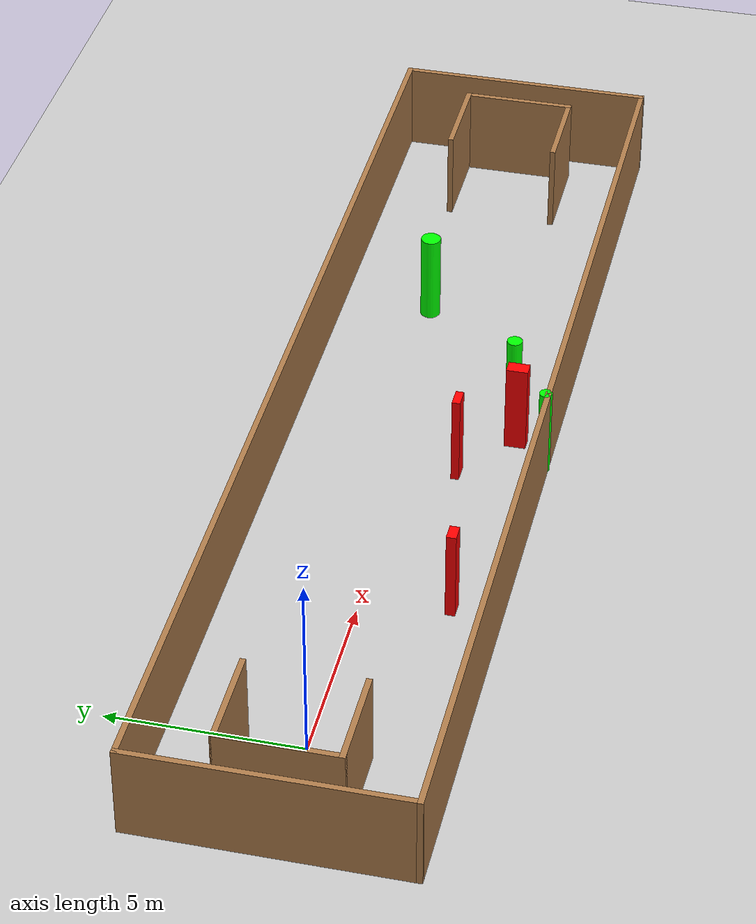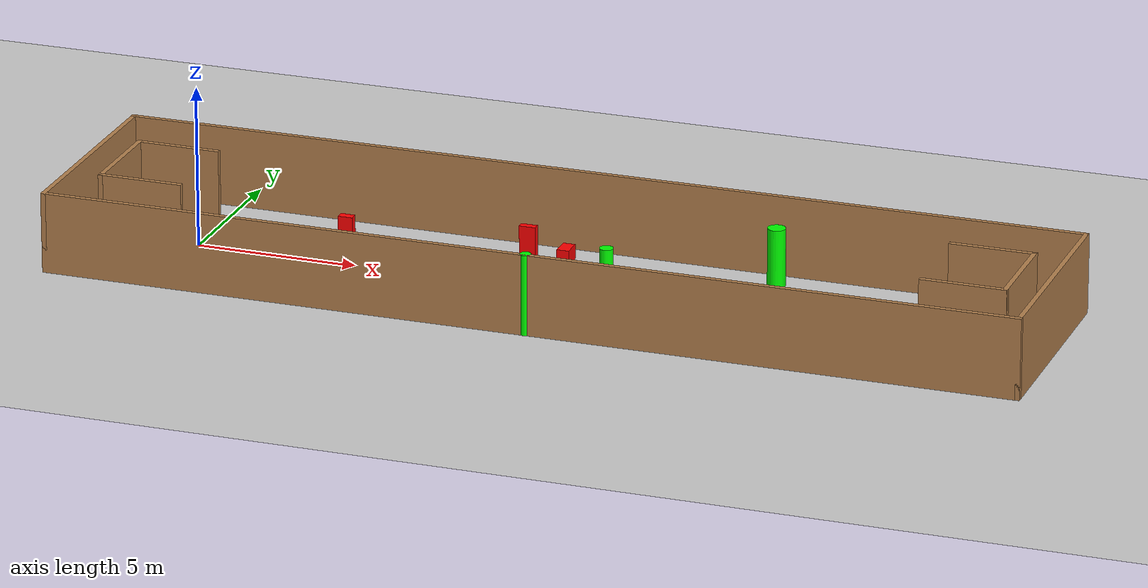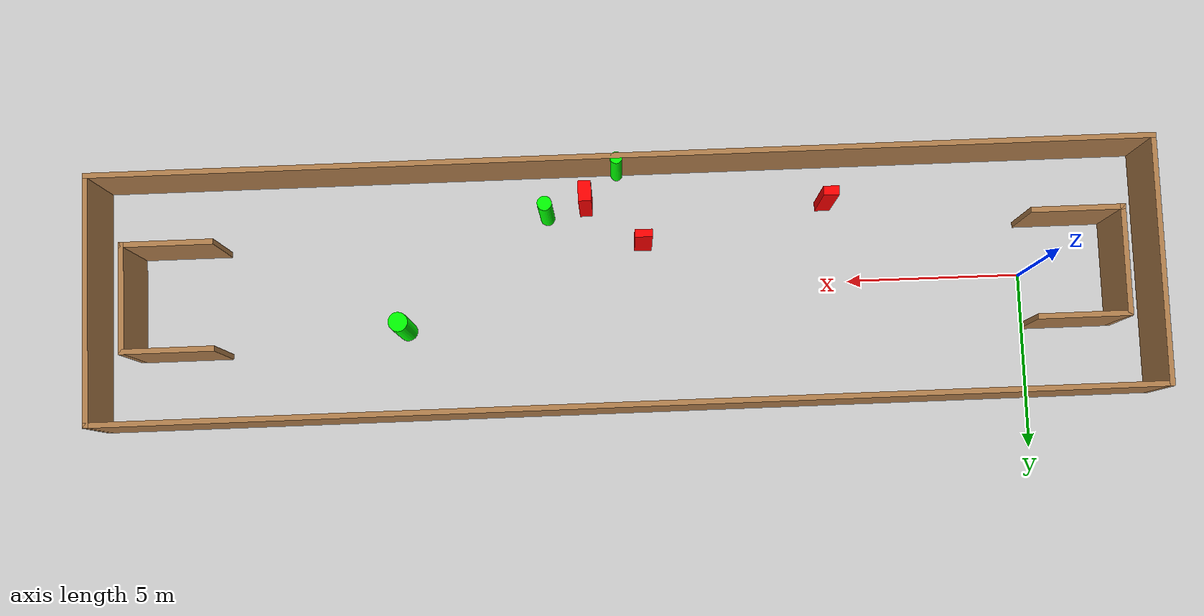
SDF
<sdf version="1.7">
 <world name="default">
  <light name="sun" type="directional">
   <pose>0 0 10 0 -0 0</pose>
   <diffuse>0.8 0.8 0.8 1</diffuse>
   <specular>0.2 0.2 0.2 1</specular>
   <attenuation>
    <range>1000</range>
    <constant>0.9</constant>
    <linear>0.01</linear>
    <quadratic>0.001</quadratic>
   </attenuation>
   <direction>-0.5 0.1 -0.9</direction>
   <spot><inner_angle>0</inner_angle><outer_angle>0</outer_angle><falloff>0</falloff></spot>
  </light>
  <model name="ground_plane">
   <static>1</static>
   <link name="link">
    <collision name="collision">
     <geometry><plane><normal>0 0 1</normal><size>100 100</size></plane></geometry>
     <surface>
      <contact><collide_bitmask>65535</collide_bitmask></contact>
      <friction><ode><mu>100</mu><mu2>50</mu2></ode></friction>
     </surface>
    </collision>
    <visual name="visual">
     <cast_shadows>0</cast_shadows>
     <geometry><plane><normal>0 0 1</normal><size>100 100</size></plane></geometry>
     <material>
      <script><uri>file://media/materials/scripts/gazebo.material</uri><name>Gazebo/Grey</name></script>
     </material>
    </visual>
   </link>
  </model>
  <gravity>0 0 -9.8</gravity>
  <magnetic_field>6e-06 2.3e-05 -4.2e-05</magnetic_field>
  <atmosphere type="adiabatic"/>
  <physics type="ode">
   <max_step_size>0.001</max_step_size>
   <real_time_factor>1</real_time_factor>
   <real_time_update_rate>1000</real_time_update_rate>
  </physics>
  <scene><ambient>0.4 0.4 0.4 1</ambient><background>0.7 0.7 0.7 1</background><shadows>1</shadows></scene>
  <spherical_coordinates>
   <surface_model>EARTH_WGS84</surface_model>
   <latitude_deg>0</latitude_deg>
   <longitude_deg>0</longitude_deg>
   <elevation>0</elevation>
   <heading_deg>0</heading_deg>
  </spherical_coordinates>
  <model name="my_base_walls">
   <link name="Wall_0">
    <collision name="Wall_0_Collision">
     <geometry><box><size>7.15 0.15 2.5</size></box></geometry>
     <pose>0 0 1.25 0 -0 0</pose>
    </collision>
    <visual name="Wall_0_Visual">
     <pose>0 0 1.25 0 -0 0</pose>
     <geometry><box><size>7.15 0.15 2.5</size></box></geometry>
     <material>
      <script><uri>file://media/materials/scripts/gazebo.material</uri><name>Gazebo/Wood</name></script>
      <ambient>1 1 1 1</ambient>
     </material>
     <meta><layer>0</layer></meta>
    </visual>
    <pose>-15 0 0 0 -0 1.5708</pose>
   </link>
   <link name="Wall_10">
    <collision name="Wall_10_Collision">
     <geometry><box><size>2.65 0.15 2.5</size></box></geometry>
     <pose>0 0 1.25 0 -0 0</pose>
    </collision>
    <visual name="Wall_10_Visual">
     <pose>0 0 1.25 0 -0 0</pose>
     <geometry><box><size>2.65 0.15 2.5</size></box></geometry>
     <material>
      <script><uri>file://media/materials/scripts/gazebo.material</uri><name>Gazebo/Wood</name></script>
      <ambient>1 1 1 1</ambient>
     </material>
     <meta><layer>0</layer></meta>
    </visual>
    <pose>-12.75 -1.5 0 0 -0 0</pose>
   </link>
   <link name="Wall_12">
    <collision name="Wall_12_Collision">
     <geometry><box><size>2.65 0.15 2.5</size></box></geometry>
     <pose>0 0 1.25 0 -0 0</pose>
    </collision>
    <visual name="Wall_12_Visual">
     <pose>0 0 1.25 0 -0 0</pose>
     <geometry><box><size>2.65 0.15 2.5</size></box></geometry>
     <material>
      <script><uri>file://media/materials/scripts/gazebo.material</uri><name>Gazebo/Wood</name></script>
      <ambient>1 1 1 1</ambient>
     </material>
     <meta><layer>0</layer></meta>
    </visual>
    <pose>-12.75 1.5 0 0 -0 0</pose>
   </link>
   <link name="Wall_14">
    <collision name="Wall_14_Collision">
     <geometry><box><size>3.15 0.15 2.5</size></box></geometry>
     <pose>0 0 1.25 0 -0 0</pose>
    </collision>
    <visual name="Wall_14_Visual">
     <pose>0 0 1.25 0 -0 0</pose>
     <geometry><box><size>3.15 0.15 2.5</size></box></geometry>
     <material>
      <script><uri>file://media/materials/scripts/gazebo.material</uri><name>Gazebo/Wood</name></script>
      <ambient>1 1 1 1</ambient>
     </material>
     <meta><layer>0</layer></meta>
    </visual>
    <pose>14 0 0 0 -0 -1.5708</pose>
   </link>
   <link name="Wall_15">
    <collision name="Wall_15_Collision">
     <geometry><box><size>2.65 0.15 2.5</size></box></geometry>
     <pose>0 0 1.25 0 -0 0</pose>
    </collision>
    <visual name="Wall_15_Visual">
     <pose>0 0 1.25 0 -0 0</pose>
     <geometry><box><size>2.65 0.15 2.5</size></box></geometry>
     <material>
      <script><uri>file://media/materials/scripts/gazebo.material</uri><name>Gazebo/Wood</name></script>
      <ambient>1 1 1 1</ambient>
     </material>
     <meta><layer>0</layer></meta>
    </visual>
    <pose>12.75 -1.5 0 0 -0 3.14159</pose>
   </link>
   <link name="Wall_17">
    <collision name="Wall_17_Collision">
     <geometry><box><size>2.65 0.15 2.5</size></box></geometry>
     <pose>0 0 1.25 0 -0 0</pose>
    </collision>
    <visual name="Wall_17_Visual">
     <pose>0 0 1.25 0 -0 0</pose>
     <geometry><box><size>2.65 0.15 2.5</size></box></geometry>
     <material>
      <script><uri>file://media/materials/scripts/gazebo.material</uri><name>Gazebo/Wood</name></script>
      <ambient>1 1 1 1</ambient>
     </material>
     <meta><layer>0</layer></meta>
    </visual>
    <pose>12.75 1.5 0 0 -0 3.14159</pose>
   </link>
   <link name="Wall_2">
    <collision name="Wall_2_Collision">
     <geometry><box><size>30.15 0.15 2.5</size></box></geometry>
     <pose>0 0 1.25 0 -0 0</pose>
    </collision>
    <visual name="Wall_2_Visual">
     <pose>0 0 1.25 0 -0 0</pose>
     <geometry><box><size>30.15 0.15 2.5</size></box></geometry>
     <material>
      <script><uri>file://media/materials/scripts/gazebo.material</uri><name>Gazebo/Wood</name></script>
      <ambient>1 1 1 1</ambient>
     </material>
     <meta><layer>0</layer></meta>
    </visual>
    <pose>-0 -3.5 0 0 -0 0</pose>
   </link>
   <link name="Wall_4">
    <collision name="Wall_4_Collision">
     <geometry><box><size>30.15 0.15 2.5</size></box></geometry>
     <pose>0 0 1.25 0 -0 0</pose>
    </collision>
    <visual name="Wall_4_Visual">
     <pose>0 0 1.25 0 -0 0</pose>
     <geometry><box><size>30.15 0.15 2.5</size></box></geometry>
     <material>
      <script><uri>file://media/materials/scripts/gazebo.material</uri><name>Gazebo/Wood</name></script>
      <ambient>1 1 1 1</ambient>
     </material>
     <meta><layer>0</layer></meta>
    </visual>
    <pose>-0 3.5 0 0 -0 0</pose>
   </link>
   <link name="Wall_6">
    <collision name="Wall_6_Collision">
     <geometry><box><size>7.15 0.15 2.5</size></box></geometry>
     <pose>0 0 1.25 0 -0 0</pose>
    </collision>
    <visual name="Wall_6_Visual">
     <pose>0 0 1.25 0 -0 0</pose>
     <geometry><box><size>7.15 0.15 2.5</size></box></geometry>
     <material>
      <script><uri>file://media/materials/scripts/gazebo.material</uri><name>Gazebo/Wood</name></script>
      <ambient>1 1 1 1</ambient>
     </material>
     <meta><layer>0</layer></meta>
    </visual>
    <pose>15 0 0 0 -0 -1.5708</pose>
   </link>
   <link name="Wall_9">
    <collision name="Wall_9_Collision">
     <geometry><box><size>3.15 0.15 2.5</size></box></geometry>
     <pose>0 0 1.25 0 -0 0</pose>
    </collision>
    <visual name="Wall_9_Visual">
     <pose>0 0 1.25 0 -0 0</pose>
     <geometry><box><size>3.15 0.15 2.5</size></box></geometry>
     <material>
      <script><uri>file://media/materials/scripts/gazebo.material</uri><name>Gazebo/Wood</name></script>
      <ambient>1 1 1 1</ambient>
     </material>
     <meta><layer>0</layer></meta>
    </visual>
    <pose>-14 0 0 0 -0 -1.5708</pose>
   </link>
   <static>1</static>
   <pose>11.5 0 0 0 -0 0</pose>
  </model>
  <model name="cylinder1">
   <static>1</static>
   <link name="link">
    <inertial>
     <mass>1</mass>
     <inertia><ixx>0.5</ixx><ixy>0</ixy><ixz>0</ixz><iyy>0.5</iyy><iyz>0</iyz><izz>1</izz></inertia>
    </inertial>
    <collision name="collision">
     <geometry><cylinder><radius>0.17141879778844996</radius><length>2.5</length></cylinder></geometry>
    </collision>
    <visual name="visual">
     <geometry><cylinder><radius>0.17141879778844996</radius><length>2.5</length></cylinder></geometry>
     <material>
      <ambient>0 1 0 1</ambient>
      <diffuse>0 1 0 1</diffuse>
      <specular>0.1 0.1 0.1 1</specular>
      <emissive>0 0 0 0</emissive>
     </material>
    </visual>
   </link>
   <pose>11.607531811226872 -3.4345581069449094 1.25 0 0 0</pose>
  </model>
  <model name="cylinder2">
   <static>1</static>
   <link name="link">
    <inertial>
     <mass>1</mass>
     <inertia><ixx>0.5</ixx><ixy>0</ixy><ixz>0</ixz><iyy>0.5</iyy><iyz>0</iyz><izz>1</izz></inertia>
    </inertial>
    <collision name="collision">
     <geometry><cylinder><radius>0.20723222912865635</radius><length>2.5</length></cylinder></geometry>
    </collision>
    <visual name="visual">
     <geometry><cylinder><radius>0.20723222912865635</radius><length>2.5</length></cylinder></geometry>
     <material>
      <ambient>0 1 0 1</ambient>
      <diffuse>0 1 0 1</diffuse>
      <specular>0.1 0.1 0.1 1</specular>
      <emissive>0 0 0 0</emissive>
     </material>
    </visual>
   </link>
   <pose>13.665158473385778 -2.2152501304487755 1.25 0 0 0</pose>
  </model>
  <model name="cylinder3">
   <static>1</static>
   <link name="link">
    <inertial>
     <mass>1</mass>
     <inertia><ixx>0.5</ixx><ixy>0</ixy><ixz>0</ixz><iyy>0.5</iyy><iyz>0</iyz><izz>1</izz></inertia>
    </inertial>
    <collision name="collision">
     <geometry><cylinder><radius>0.2732326435128964</radius><length>2.5</length></cylinder></geometry>
    </collision>
    <visual name="visual">
     <geometry><cylinder><radius>0.2732326435128964</radius><length>2.5</length></cylinder></geometry>
     <material>
      <ambient>0 1 0 1</ambient>
      <diffuse>0 1 0 1</diffuse>
      <specular>0.1 0.1 0.1 1</specular>
      <emissive>0 0 0 0</emissive>
     </material>
    </visual>
   </link>
   <pose>17.83532943500518 0.9619147407303963 1.25 0 0 0</pose>
  </model>
  <model name="box1">
   <static>1</static>
   <link name="link">
    <inertial>
     <mass>1</mass>
     <inertia><ixx>0.083</ixx><ixy>0</ixy><ixz>0</ixz><iyy>0.083</iyy><iyz>0</iyz><izz>0.083</izz></inertia>
    </inertial>
    <collision name="collision">
     <geometry><box><size>0.49864723364448377 0.21435329688137217 2.5</size></box></geometry>
    </collision>
    <visual name="visual">
     <geometry><box><size>0.49864723364448377 0.21435329688137217 2.5</size></box></geometry>
     <material>
      <ambient>1 0 0 1</ambient>
      <diffuse>1 0 0 1</diffuse>
      <specular>0.1 0.1 0.1 1</specular>
      <emissive>0 0 0 0</emissive>
     </material>
    </visual>
    <sensor name="my_contact" type="contact">
     <contact><collision>box_collision</collision><topic>__default_topic__</topic></contact>
    </sensor>
   </link>
   <pose>10.919352349039713 -1.2650566823303055 1.25 0 0 0</pose>
  </model>
  <model name="box2">
   <static>1</static>
   <link name="link">
    <inertial>
     <mass>1</mass>
     <inertia><ixx>0.083</ixx><ixy>0</ixy><ixz>0</ixz><iyy>0.083</iyy><iyz>0</iyz><izz>0.083</izz></inertia>
    </inertial>
    <collision name="collision">
     <geometry><box><size>0.44459622640883056 0.2556521917360443 2.5</size></box></geometry>
    </collision>
    <visual name="visual">
     <geometry><box><size>0.44459622640883056 0.2556521917360443 2.5</size></box></geometry>
     <material>
      <ambient>1 0 0 1</ambient>
      <diffuse>1 0 0 1</diffuse>
      <specular>0.1 0.1 0.1 1</specular>
      <emissive>0 0 0 0</emissive>
     </material>
    </visual>
    <sensor name="my_contact" type="contact">
     <contact><collision>box_collision</collision><topic>__default_topic__</topic></contact>
    </sensor>
   </link>
   <pose>5.616010874317677 -2.268716158393398 1.25 0 0 0</pose>
  </model>
  <model name="box3">
   <static>1</static>
   <link name="link">
    <inertial>
     <mass>1</mass>
     <inertia><ixx>0.083</ixx><ixy>0</ixy><ixz>0</ixz><iyy>0.083</iyy><iyz>0</iyz><izz>0.083</izz></inertia>
    </inertial>
    <collision name="collision">
     <geometry><box><size>0.36827326596452037 0.5754148482441231 2.5</size></box></geometry>
    </collision>
    <visual name="visual">
     <geometry><box><size>0.36827326596452037 0.5754148482441231 2.5</size></box></geometry>
     <material>
      <ambient>1 0 0 1</ambient>
      <diffuse>1 0 0 1</diffuse>
      <specular>0.1 0.1 0.1 1</specular>
      <emissive>0 0 0 0</emissive>
     </material>
    </visual>
    <sensor name="my_contact" type="contact">
     <contact><collision>box_collision</collision><topic>__default_topic__</topic></contact>
    </sensor>
   </link>
   <pose>12.531086927330184 -2.5282032662960097 1.25 0 0 0</pose>
  </model>
 </world>
</sdf>
